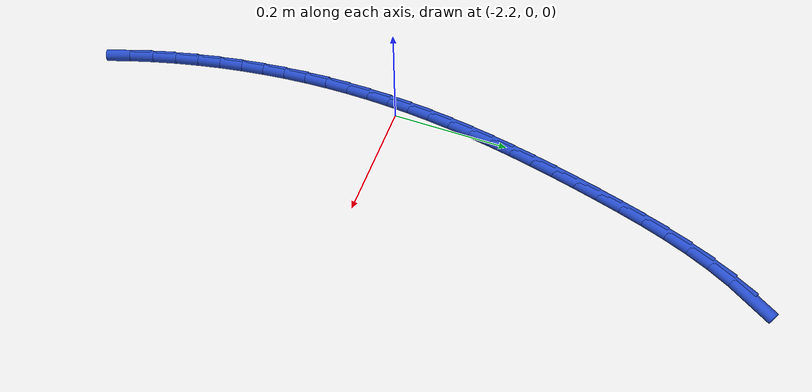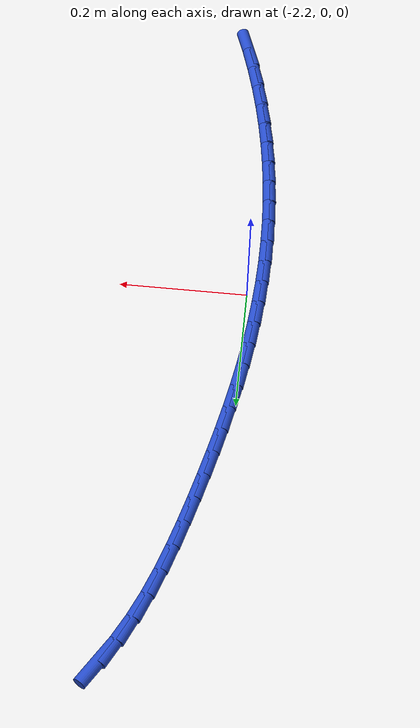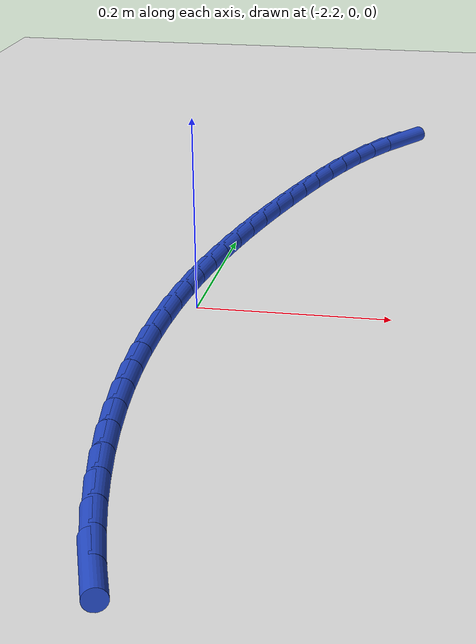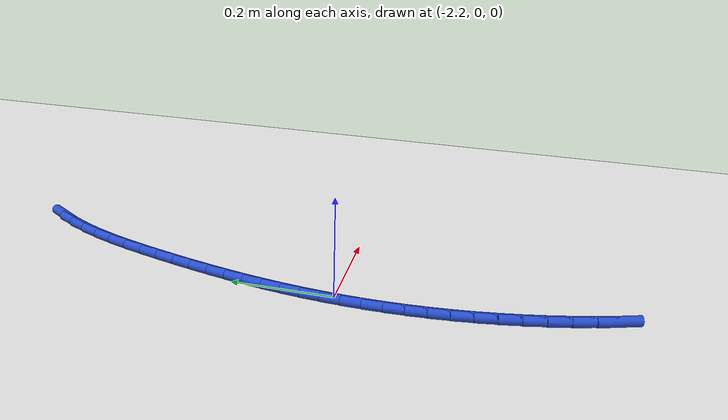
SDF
<sdf version="1.6">
 <world name="default">
  <model name="ground_plane">
   <static>1</static>
   <link name="link">
    <collision name="collision">
     <geometry><plane><normal>0 0 1</normal><size>100 100</size></plane></geometry>
     <surface><friction><ode><mu>100</mu><mu2>50</mu2></ode></friction></surface>
    </collision>
    <visual name="visual">
     <cast_shadows>0</cast_shadows>
     <geometry><plane><normal>0 0 1</normal><size>100 100</size></plane></geometry>
     <material>
      <script><uri>file://media/materials/scripts/gazebo.material</uri><name>Gazebo/WhiteGlow</name></script>
     </material>
    </visual>
   </link>
  </model>
  <model name="line">
   <link name="link_75">
    <pose>-2.0486094862327846 0.6286707029409319 0.01 0 1.57 1.0101098071566426</pose>
    <collision name="collision">
     <geometry><cylinder><radius>0.01</radius><length>0.08</length></cylinder></geometry>
    </collision>
    <visual name="visual">
     <material>
      <script><name>Gazebo/Blue</name><uri>file://media/materials/scripts/gazebo.material</uri></script>
     </material>
     <geometry><cylinder><radius>0.01</radius><length>0.08</length></cylinder></geometry>
    </visual>
   </link>
   <link name="link_76">
    <pose>-2.069178537252091 0.5959125500746273 0.01 0 1.57 1.0898313869666694</pose>
    <collision name="collision">
     <geometry><cylinder><radius>0.01</radius><length>0.08</length></cylinder></geometry>
    </collision>
    <visual name="visual">
     <material>
      <script><name>Gazebo/Blue</name><uri>file://media/materials/scripts/gazebo.material</uri></script>
     </material>
     <geometry><cylinder><radius>0.01</radius><length>0.08</length></cylinder></geometry>
    </visual>
   </link>
   <link name="link_77">
    <pose>-2.0874131650303442 0.5609694641230067 0.01 0 1.57 1.155523606739354</pose>
    <collision name="collision">
     <geometry><cylinder><radius>0.01</radius><length>0.08</length></cylinder></geometry>
    </collision>
    <visual name="visual">
     <material>
      <script><name>Gazebo/Blue</name><uri>file://media/materials/scripts/gazebo.material</uri></script>
     </material>
     <geometry><cylinder><radius>0.01</radius><length>0.08</length></cylinder></geometry>
    </visual>
   </link>
   <link name="link_78">
    <pose>-2.1036006082597964 0.5242561192167781 0.01 0 1.57 1.2085378286590995</pose>
    <collision name="collision">
     <geometry><cylinder><radius>0.01</radius><length>0.08</length></cylinder></geometry>
    </collision>
    <visual name="visual">
     <material>
      <script><name>Gazebo/Blue</name><uri>file://media/materials/scripts/gazebo.material</uri></script>
     </material>
     <geometry><cylinder><radius>0.01</radius><length>0.08</length></cylinder></geometry>
    </visual>
   </link>
   <link name="link_79">
    <pose>-2.1180281056327015 0.4861871894866479 0.01 0 1.57 1.2501649054313053</pose>
    <collision name="collision">
     <geometry><cylinder><radius>0.01</radius><length>0.08</length></cylinder></geometry>
    </collision>
    <visual name="visual">
     <material>
      <script><name>Gazebo/Blue</name><uri>file://media/materials/scripts/gazebo.material</uri></script>
     </material>
     <geometry><cylinder><radius>0.01</radius><length>0.08</length></cylinder></geometry>
    </visual>
   </link>
   <link name="link_80">
    <pose>-2.1309828958413144 0.4471773490633235 0.01 0 1.57 1.2814641634787134</pose>
    <collision name="collision">
     <geometry><cylinder><radius>0.01</radius><length>0.08</length></cylinder></geometry>
    </collision>
    <visual name="visual">
     <material>
      <script><name>Gazebo/Blue</name><uri>file://media/materials/scripts/gazebo.material</uri></script>
     </material>
     <geometry><cylinder><radius>0.01</radius><length>0.08</length></cylinder></geometry>
    </visual>
   </link>
   <link name="link_81">
    <pose>-2.142752217577888 0.40764127207751294 0.01 0 1.57 1.3031808425962752</pose>
    <collision name="collision">
     <geometry><cylinder><radius>0.01</radius><length>0.08</length></cylinder></geometry>
    </collision>
    <visual name="visual">
     <material>
      <script><name>Gazebo/Blue</name><uri>file://media/materials/scripts/gazebo.material</uri></script>
     </material>
     <geometry><cylinder><radius>0.01</radius><length>0.08</length></cylinder></geometry>
    </visual>
   </link>
   <link name="link_82">
    <pose>-2.153623309534676 0.367993632659923 0.01 0 1.57 1.3170399175182927</pose>
    <collision name="collision">
     <geometry><cylinder><radius>0.01</radius><length>0.08</length></cylinder></geometry>
    </collision>
    <visual name="visual">
     <material>
      <script><name>Gazebo/Blue</name><uri>file://media/materials/scripts/gazebo.material</uri></script>
     </material>
     <geometry><cylinder><radius>0.01</radius><length>0.08</length></cylinder></geometry>
    </visual>
   </link>
   <link name="link_83">
    <pose>-2.163841913682981 0.32859236743159004 0.01 0 1.57 1.33036671254535</pose>
    <collision name="collision">
     <geometry><cylinder><radius>0.01</radius><length>0.08</length></cylinder></geometry>
    </collision>
    <visual name="visual">
     <material>
      <script><name>Gazebo/Blue</name><uri>file://media/materials/scripts/gazebo.material</uri></script>
     </material>
     <geometry><cylinder><radius>0.01</radius><length>0.08</length></cylinder></geometry>
    </visual>
   </link>
   <link name="link_84">
    <pose>-2.173429143681486 0.2894882839014983 0.01 0 1.57 1.3456172893379073</pose>
    <collision name="collision">
     <geometry><cylinder><radius>0.01</radius><length>0.08</length></cylinder></geometry>
    </collision>
    <visual name="visual">
     <material>
      <script><name>Gazebo/Blue</name><uri>file://media/materials/scripts/gazebo.material</uri></script>
     </material>
     <geometry><cylinder><radius>0.01</radius><length>0.08</length></cylinder></geometry>
    </visual>
   </link>
   <link name="link_85">
    <pose>-2.182330456792902 0.25062874633299986 0.01 0 1.57 1.3627992704058107</pose>
    <collision name="collision">
     <geometry><cylinder><radius>0.01</radius><length>0.08</length></cylinder></geometry>
    </collision>
    <visual name="visual">
     <material>
      <script><name>Gazebo/Blue</name><uri>file://media/materials/scripts/gazebo.material</uri></script>
     </material>
     <geometry><cylinder><radius>0.01</radius><length>0.08</length></cylinder></geometry>
    </visual>
   </link>
   <link name="link_86">
    <pose>-2.19049125285237 0.2119610404700591 0.01 0 1.57 1.3819011667877525</pose>
    <collision name="collision">
     <geometry><cylinder><radius>0.01</radius><length>0.08</length></cylinder></geometry>
    </collision>
    <visual name="visual">
     <material>
      <script><name>Gazebo/Blue</name><uri>file://media/materials/scripts/gazebo.material</uri></script>
     </material>
     <geometry><cylinder><radius>0.01</radius><length>0.08</length></cylinder></geometry>
    </visual>
   </link>
   <link name="link_87">
    <pose>-2.19785693169503 0.17343245205663885 0.01 0 1.57 1.4028918858067294</pose>
    <collision name="collision">
     <geometry><cylinder><radius>0.01</radius><length>0.08</length></cylinder></geometry>
    </collision>
    <visual name="visual">
     <material>
      <script><name>Gazebo/Blue</name><uri>file://media/materials/scripts/gazebo.material</uri></script>
     </material>
     <geometry><cylinder><radius>0.01</radius><length>0.08</length></cylinder></geometry>
    </visual>
   </link>
   <link name="link_88">
    <pose>-2.204372893156024 0.1349902668367022 0.01 0 1.57 1.4257185798779677</pose>
    <collision name="collision">
     <geometry><cylinder><radius>0.01</radius><length>0.08</length></cylinder></geometry>
    </collision>
    <visual name="visual">
     <material>
      <script><name>Gazebo/Blue</name><uri>file://media/materials/scripts/gazebo.material</uri></script>
     </material>
     <geometry><cylinder><radius>0.01</radius><length>0.08</length></cylinder></geometry>
    </visual>
   </link>
   <link name="link_89">
    <pose>-2.2099845370704916 0.09658177055421338 0.01 0 1.57 1.4503048717641462</pose>
    <collision name="collision">
     <geometry><cylinder><radius>0.01</radius><length>0.08</length></cylinder></geometry>
    </collision>
    <visual name="visual">
     <material>
      <script><name>Gazebo/Blue</name><uri>file://media/materials/scripts/gazebo.material</uri></script>
     </material>
     <geometry><cylinder><radius>0.01</radius><length>0.08</length></cylinder></geometry>
    </visual>
   </link>
   <link name="link_90">
    <pose>-2.214637263273575 0.058154248953135396 0.01 0 1.57 1.476463600797388</pose>
    <collision name="collision">
     <geometry><cylinder><radius>0.01</radius><length>0.08</length></cylinder></geometry>
    </collision>
    <visual name="visual">
     <material>
      <script><name>Gazebo/Blue</name><uri>file://media/materials/scripts/gazebo.material</uri></script>
     </material>
     <geometry><cylinder><radius>0.01</radius><length>0.08</length></cylinder></geometry>
    </visual>
   </link>
   <link name="link_91">
    <pose>-2.2182794874502925 0.019658445067396318 0.01 0 1.57 1.5036123883531889</pose>
    <collision name="collision">
     <geometry><cylinder><radius>0.01</radius><length>0.08</length></cylinder></geometry>
    </collision>
    <visual name="visual">
     <material>
      <script><name>Gazebo/Blue</name><uri>file://media/materials/scripts/gazebo.material</uri></script>
     </material>
     <geometry><cylinder><radius>0.01</radius><length>0.08</length></cylinder></geometry>
    </visual>
   </link>
   <link name="link_92">
    <pose>-2.2208763073503035 -0.018935774194538336 0.01 0 1.57 1.531498410478557</pose>
    <collision name="collision">
     <geometry><cylinder><radius>0.01</radius><length>0.08</length></cylinder></geometry>
    </collision>
    <visual name="visual">
     <material>
      <script><name>Gazebo/Blue</name><uri>file://media/materials/scripts/gazebo.material</uri></script>
     </material>
     <geometry><cylinder><radius>0.01</radius><length>0.08</length></cylinder></geometry>
    </visual>
   </link>
   <link name="link_93">
    <pose>-2.2223985567259112 -0.05765196632356302 0.01 0 1.57 1.5600273308179469</pose>
    <collision name="collision">
     <geometry><cylinder><radius>0.01</radius><length>0.08</length></cylinder></geometry>
    </collision>
    <visual name="visual">
     <material>
      <script><name>Gazebo/Blue</name><uri>file://media/materials/scripts/gazebo.material</uri></script>
     </material>
     <geometry><cylinder><radius>0.01</radius><length>0.08</length></cylinder></geometry>
    </visual>
   </link>
   <link name="link_94">
    <pose>-2.222817074573104 -0.09651368279935382 0.01 0 1.57 -1.5524955214907534</pose>
    <collision name="collision">
     <geometry><cylinder><radius>0.01</radius><length>0.08</length></cylinder></geometry>
    </collision>
    <visual name="visual">
     <material>
      <script><name>Gazebo/Blue</name><uri>file://media/materials/scripts/gazebo.material</uri></script>
     </material>
     <geometry><cylinder><radius>0.01</radius><length>0.08</length></cylinder></geometry>
    </visual>
   </link>
   <link name="link_95">
    <pose>-2.222102699887869 -0.13554447510158588 0.01 0 1.57 -1.5229932864671905</pose>
    <collision name="collision">
     <geometry><cylinder><radius>0.01</radius><length>0.08</length></cylinder></geometry>
    </collision>
    <visual name="visual">
     <material>
      <script><name>Gazebo/Blue</name><uri>file://media/materials/scripts/gazebo.material</uri></script>
     </material>
     <geometry><cylinder><radius>0.01</radius><length>0.08</length></cylinder></geometry>
    </visual>
   </link>
   <link name="link_96">
    <pose>-2.220226271666195 -0.1747678947099345 0.01 0 1.57 -1.4931718329774581</pose>
    <collision name="collision">
     <geometry><cylinder><radius>0.01</radius><length>0.08</length></cylinder></geometry>
    </collision>
    <visual name="visual">
     <material>
      <script><name>Gazebo/Blue</name><uri>file://media/materials/scripts/gazebo.material</uri></script>
     </material>
     <geometry><cylinder><radius>0.01</radius><length>0.08</length></cylinder></geometry>
    </visual>
   </link>
   <link name="link_97">
    <pose>-2.2171586289040692 -0.214207493104075 0.01 0 1.57 -1.4631472812605437</pose>
    <collision name="collision">
     <geometry><cylinder><radius>0.01</radius><length>0.08</length></cylinder></geometry>
    </collision>
    <visual name="visual">
     <material>
      <script><name>Gazebo/Blue</name><uri>file://media/materials/scripts/gazebo.material</uri></script>
     </material>
     <geometry><cylinder><radius>0.01</radius><length>0.08</length></cylinder></geometry>
    </visual>
   </link>
   <link name="link_98">
    <pose>-2.2128706105974807 -0.25388682176368327 0.01 0 1.57 -1.4330366676815876</pose>
    <collision name="collision">
     <geometry><cylinder><radius>0.01</radius><length>0.08</length></cylinder></geometry>
    </collision>
    <visual name="visual">
     <material>
      <script><name>Gazebo/Blue</name><uri>file://media/materials/scripts/gazebo.material</uri></script>
     </material>
     <geometry><cylinder><radius>0.01</radius><length>0.08</length></cylinder></geometry>
    </visual>
   </link>
   <link name="link_99">
    <pose>-2.2073330557424167 -0.29382943216843316 0.01 0 1.57 -1.402955915796949</pose>
    <collision name="collision">
     <geometry><cylinder><radius>0.01</radius><length>0.08</length></cylinder></geometry>
    </collision>
    <visual name="visual">
     <material>
      <script><name>Gazebo/Blue</name><uri>file://media/materials/scripts/gazebo.material</uri></script>
     </material>
     <geometry><cylinder><radius>0.01</radius><length>0.08</length></cylinder></geometry>
    </visual>
   </link>
   <link name="link_100">
    <pose>-2.200516803334865 -0.33405887579800053 0.01 0 1.57 -1.3730178562307567</pose>
    <collision name="collision">
     <geometry><cylinder><radius>0.01</radius><length>0.08</length></cylinder></geometry>
    </collision>
    <visual name="visual">
     <material>
      <script><name>Gazebo/Blue</name><uri>file://media/materials/scripts/gazebo.material</uri></script>
     </material>
     <geometry><cylinder><radius>0.01</radius><length>0.08</length></cylinder></geometry>
    </visual>
   </link>
   <link name="link_101">
    <pose>-2.1923926923708144 -0.37459870413206076 0.01 0 1.57 -1.3431440513014166</pose>
    <collision name="collision">
     <geometry><cylinder><radius>0.01</radius><length>0.08</length></cylinder></geometry>
    </collision>
    <visual name="visual">
     <material>
      <script><name>Gazebo/Blue</name><uri>file://media/materials/scripts/gazebo.material</uri></script>
     </material>
     <geometry><cylinder><radius>0.01</radius><length>0.08</length></cylinder></geometry>
    </visual>
   </link>
   <link name="link_102">
    <pose>-2.1829289307214133 -0.4154491886013644 0.01 0 1.57 -1.3116782319738458</pose>
    <collision name="collision">
     <geometry><cylinder><radius>0.01</radius><length>0.08</length></cylinder></geometry>
    </collision>
    <visual name="visual">
     <material>
      <script><name>Gazebo/Blue</name><uri>file://media/materials/scripts/gazebo.material</uri></script>
     </material>
     <geometry><cylinder><radius>0.01</radius><length>0.08</length></cylinder></geometry>
    </visual>
   </link>
   <link name="link_103">
    <pose>-2.172071080897876 -0.4564102357283242 0.01 0 1.57 -1.2773798114250794</pose>
    <collision name="collision">
     <geometry><cylinder><radius>0.01</radius><length>0.08</length></cylinder></geometry>
    </collision>
    <visual name="visual">
     <material>
      <script><name>Gazebo/Blue</name><uri>file://media/materials/scripts/gazebo.material</uri></script>
     </material>
     <geometry><cylinder><radius>0.01</radius><length>0.08</length></cylinder></geometry>
    </visual>
   </link>
   <link name="link_104">
    <pose>-2.1597531527451346 -0.49717953467482323 0.01 0 1.57 -1.2397056677483091</pose>
    <collision name="collision">
     <geometry><cylinder><radius>0.01</radius><length>0.08</length></cylinder></geometry>
    </collision>
    <visual name="visual">
     <material>
      <script><name>Gazebo/Blue</name><uri>file://media/materials/scripts/gazebo.material</uri></script>
     </material>
     <geometry><cylinder><radius>0.01</radius><length>0.08</length></cylinder></geometry>
    </visual>
   </link>
  </model>
 </world>
</sdf>
